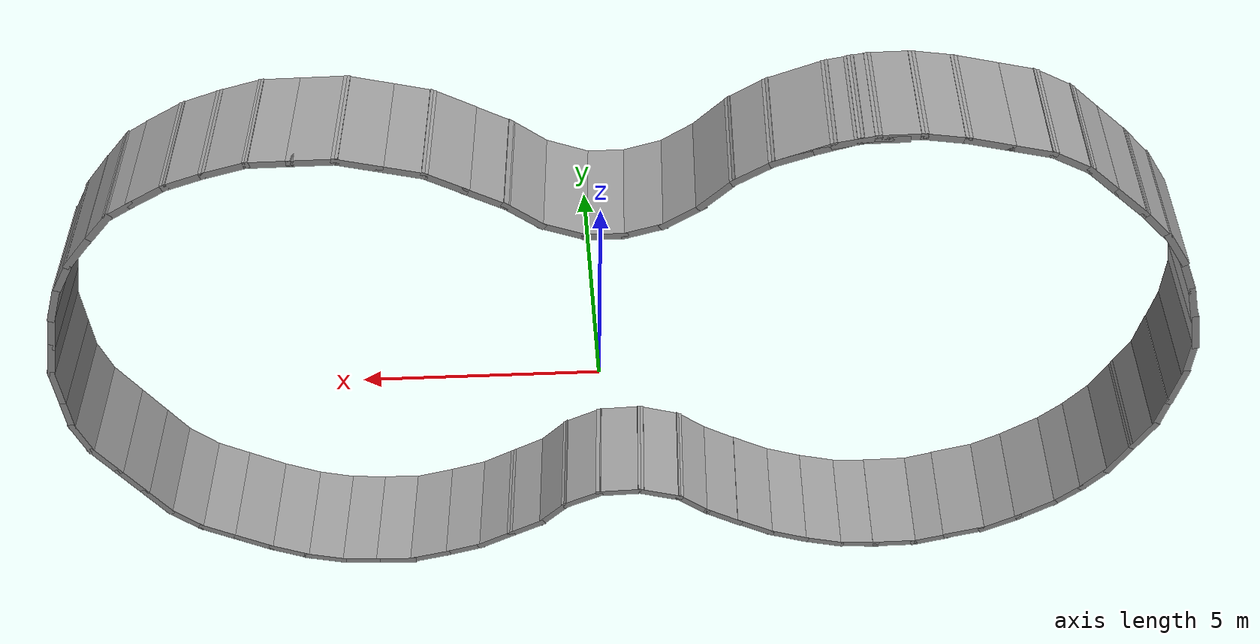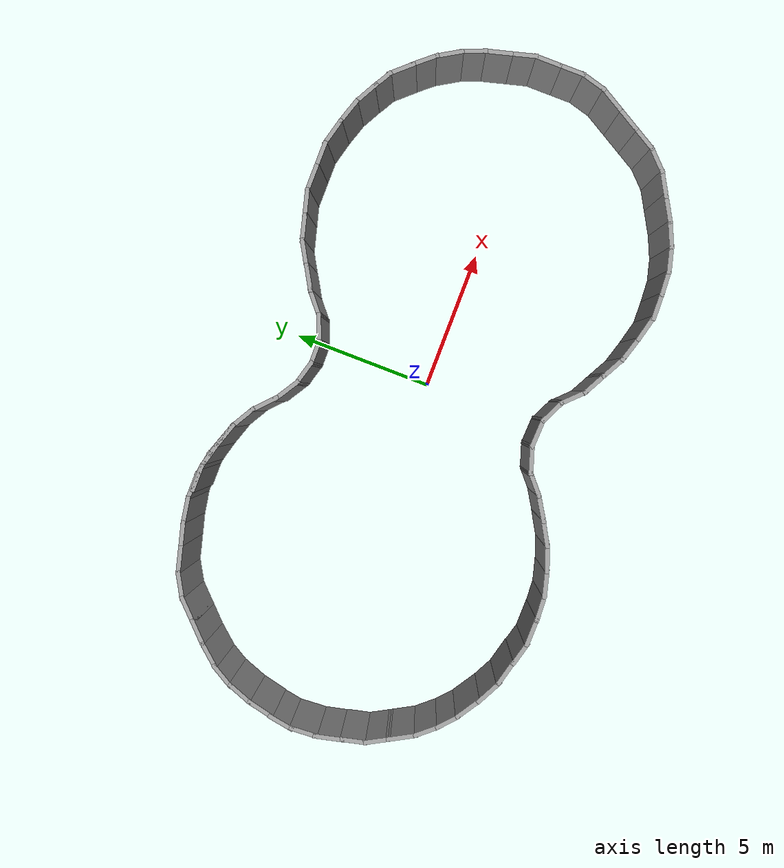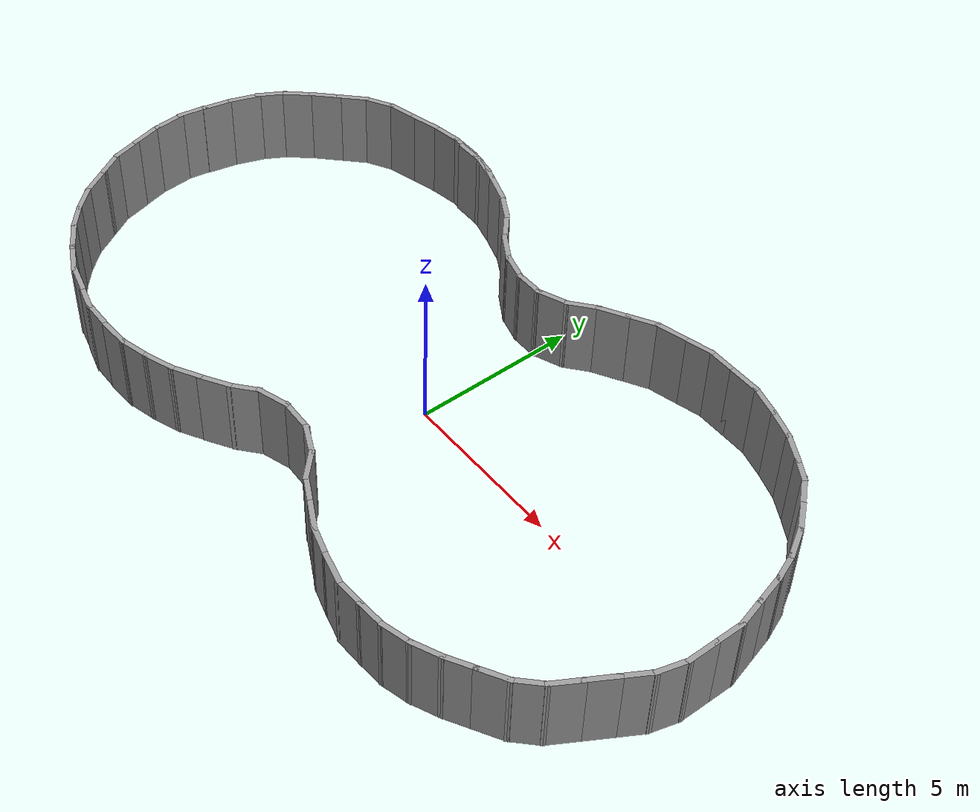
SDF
<?xml version='1.0'?>
<sdf version='1.7'>
  <model name='pool_circle'>
    <pose>-0.428757 -0.081833 0 0 -0 0</pose>
    <link name='Wall_0'>
      <collision name='Wall_0_Collision'>
        <geometry>
          <box>
            <size>1 0.15 2.5</size>
          </box>
        </geometry>
        <pose>0 0 1.25 0 -0 0</pose>
      </collision>
      <visual name='Wall_0_Visual'>
        <pose>0 0 1.25 0 -0 0</pose>
        <geometry>
          <box>
            <size>1 0.15 2.5</size>
          </box>
        </geometry>
        <material>
          <script>
            <uri>file://media/materials/scripts/gazebo.material</uri>
            <name>Gazebo/Grey</name>
          </script>
          <ambient>1 1 1 1</ambient>
        </material>
        <meta>
          <layer>0</layer>
        </meta>
      </visual>
      <pose>-5.26707 6.16933 0 0 -0 0</pose>
    </link>
    <link name='Wall_1'>
      <collision name='Wall_1_Collision'>
        <geometry>
          <box>
            <size>1 0.15 2.5</size>
          </box>
        </geometry>
        <pose>0 0 1.25 0 -0 0</pose>
      </collision>
      <visual name='Wall_1_Visual'>
        <pose>0 0 1.25 0 -0 0</pose>
        <geometry>
          <box>
            <size>1 0.15 2.5</size>
          </box>
        </geometry>
        <material>
          <script>
            <uri>file://media/materials/scripts/gazebo.material</uri>
            <name>Gazebo/Grey</name>
          </script>
          <ambient>1 1 1 1</ambient>
        </material>
        <meta>
          <layer>0</layer>
        </meta>
      </visual>
      <pose>-4.43155 6.05933 0 0 -0 -0.261799</pose>
    </link>
    <link name='Wall_10'>
      <collision name='Wall_10_Collision'>
        <geometry>
          <box>
            <size>1 0.15 2.5</size>
          </box>
        </geometry>
        <pose>0 0 1.25 0 -0 0</pose>
      </collision>
      <visual name='Wall_10_Visual'>
        <pose>0 0 1.25 0 -0 0</pose>
        <geometry>
          <box>
            <size>1 0.15 2.5</size>
          </box>
        </geometry>
        <material>
          <script>
            <uri>file://media/materials/scripts/gazebo.material</uri>
            <name>Gazebo/Grey</name>
          </script>
          <ambient>1 1 1 1</ambient>
        </material>
        <meta>
          <layer>0</layer>
        </meta>
      </visual>
      <pose>2.33446 5.08329 0 0 -0 0.523599</pose>
    </link>
    <link name='Wall_11'>
      <collision name='Wall_11_Collision'>
        <geometry>
          <box>
            <size>1 0.15 2.5</size>
          </box>
        </geometry>
        <pose>0 0 1.25 0 -0 0</pose>
      </collision>
      <visual name='Wall_11_Visual'>
        <pose>0 0 1.25 0 -0 0</pose>
        <geometry>
          <box>
            <size>1 0.15 2.5</size>
          </box>
        </geometry>
        <material>
          <script>
            <uri>file://media/materials/scripts/gazebo.material</uri>
            <name>Gazebo/Grey</name>
          </script>
          <ambient>1 1 1 1</ambient>
        </material>
        <meta>
          <layer>0</layer>
        </meta>
      </visual>
      <pose>3.07059 5.51684 0 0 -0 0.523599</pose>
    </link>
    <link name='Wall_12'>
      <collision name='Wall_12_Collision'>
        <geometry>
          <box>
            <size>1 0.15 2.5</size>
          </box>
        </geometry>
        <pose>0 0 1.25 0 -0 0</pose>
      </collision>
      <visual name='Wall_12_Visual'>
        <pose>0 0 1.25 0 -0 0</pose>
        <geometry>
          <box>
            <size>1 0.15 2.5</size>
          </box>
        </geometry>
        <material>
          <script>
            <uri>file://media/materials/scripts/gazebo.material</uri>
            <name>Gazebo/Grey</name>
          </script>
          <ambient>1 1 1 1</ambient>
        </material>
        <meta>
          <layer>0</layer>
        </meta>
      </visual>
      <pose>3.84917 5.83933 0 0 -0 0.261799</pose>
    </link>
    <link name='Wall_13'>
      <collision name='Wall_13_Collision'>
        <geometry>
          <box>
            <size>1 0.15 2.5</size>
          </box>
        </geometry>
        <pose>0 0 1.25 0 -0 0</pose>
      </collision>
      <visual name='Wall_13_Visual'>
        <pose>0 0 1.25 0 -0 0</pose>
        <geometry>
          <box>
            <size>1 0.15 2.5</size>
          </box>
        </geometry>
        <material>
          <script>
            <uri>file://media/materials/scripts/gazebo.material</uri>
            <name>Gazebo/Grey</name>
          </script>
          <ambient>1 1 1 1</ambient>
        </material>
        <meta>
          <layer>0</layer>
        </meta>
      </visual>
      <pose>4.6702 6.05933 0 0 -0 0.261799</pose>
    </link>
    <link name='Wall_14'>
      <collision name='Wall_14_Collision'>
        <geometry>
          <box>
            <size>1 0.15 2.5</size>
          </box>
        </geometry>
        <pose>0 0 1.25 0 -0 0</pose>
      </collision>
      <visual name='Wall_14_Visual'>
        <pose>0 0 1.25 0 -0 0</pose>
        <geometry>
          <box>
            <size>1 0.15 2.5</size>
          </box>
        </geometry>
        <material>
          <script>
            <uri>file://media/materials/scripts/gazebo.material</uri>
            <name>Gazebo/Grey</name>
          </script>
          <ambient>1 1 1 1</ambient>
        </material>
        <meta>
          <layer>0</layer>
        </meta>
      </visual>
      <pose>5.50572 6.16933 0 0 -0 0</pose>
    </link>
    <link name='Wall_15'>
      <collision name='Wall_15_Collision'>
        <geometry>
          <box>
            <size>0.980668 0.15 2.5</size>
          </box>
        </geometry>
        <pose>0 0 1.25 0 -0 0</pose>
      </collision>
      <visual name='Wall_15_Visual'>
        <pose>0 0 1.25 0 -0 0</pose>
        <geometry>
          <box>
            <size>0.980668 0.15 2.5</size>
          </box>
        </geometry>
        <material>
          <script>
            <uri>file://media/materials/scripts/gazebo.material</uri>
            <name>Gazebo/Grey</name>
          </script>
          <ambient>1 1 1 1</ambient>
        </material>
        <meta>
          <layer>0</layer>
        </meta>
      </visual>
      <pose>6.34605 6.16933 0 0 -0 0</pose>
    </link>
    <link name='Wall_16'>
      <collision name='Wall_16_Collision'>
        <geometry>
          <box>
            <size>1.03244 0.15 2.5</size>
          </box>
        </geometry>
        <pose>0 0 1.25 0 -0 0</pose>
      </collision>
      <visual name='Wall_16_Visual'>
        <pose>0 0 1.25 0 -0 0</pose>
        <geometry>
          <box>
            <size>1.03244 0.15 2.5</size>
          </box>
        </geometry>
        <material>
          <script>
            <uri>file://media/materials/scripts/gazebo.material</uri>
            <name>Gazebo/Grey</name>
          </script>
          <ambient>1 1 1 1</ambient>
        </material>
        <meta>
          <layer>0</layer>
        </meta>
      </visual>
      <pose>7.20801 6.05933 0 0 -0 -0.251963</pose>
    </link>
    <link name='Wall_2'>
      <collision name='Wall_2_Collision'>
        <geometry>
          <box>
            <size>1.015 0.15 2.5</size>
          </box>
        </geometry>
        <pose>0 0 1.25 0 -0 0</pose>
      </collision>
      <visual name='Wall_2_Visual'>
        <pose>0 0 1.25 0 -0 0</pose>
        <geometry>
          <box>
            <size>1.015 0.15 2.5</size>
          </box>
        </geometry>
        <material>
          <script>
            <uri>file://media/materials/scripts/gazebo.material</uri>
            <name>Gazebo/Grey</name>
          </script>
          <ambient>1 1 1 1</ambient>
        </material>
        <meta>
          <layer>0</layer>
        </meta>
      </visual>
      <pose>-3.61051 5.8132 0 0 -0 -0.320188</pose>
    </link>
    <link name='Wall_3'>
      <collision name='Wall_3_Collision'>
        <geometry>
          <box>
            <size>1 0.15 2.5</size>
          </box>
        </geometry>
        <pose>0 0 1.25 0 -0 0</pose>
      </collision>
      <visual name='Wall_3_Visual'>
        <pose>0 0 1.25 0 -0 0</pose>
        <geometry>
          <box>
            <size>1 0.15 2.5</size>
          </box>
        </geometry>
        <material>
          <script>
            <uri>file://media/materials/scripts/gazebo.material</uri>
            <name>Gazebo/Grey</name>
          </script>
          <ambient>1 1 1 1</ambient>
        </material>
        <meta>
          <layer>0</layer>
        </meta>
      </visual>
      <pose>-2.83193 5.46458 0 0 -0 -0.523599</pose>
    </link>
    <link name='Wall_33'>
      <collision name='Wall_33_Collision'>
        <geometry>
          <box>
            <size>0.995804 0.15 2.5</size>
          </box>
        </geometry>
        <pose>0 0 1.25 0 -0 0</pose>
      </collision>
      <visual name='Wall_33_Visual'>
        <pose>0 0 1.25 0 -0 0</pose>
        <geometry>
          <box>
            <size>0.995804 0.15 2.5</size>
          </box>
        </geometry>
        <material>
          <script>
            <uri>file://media/materials/scripts/gazebo.material</uri>
            <name>Gazebo/Grey</name>
          </script>
          <ambient>1 1 1 1</ambient>
        </material>
        <meta>
          <layer>0</layer>
        </meta>
      </visual>
      <pose>8.03732 5.8181 0 0 -0 -0.315521</pose>
    </link>
    <link name='Wall_34'>
      <collision name='Wall_34_Collision'>
        <geometry>
          <box>
            <size>1.00653 0.15 2.5</size>
          </box>
        </geometry>
        <pose>0 0 1.25 0 -0 0</pose>
      </collision>
      <visual name='Wall_34_Visual'>
        <pose>0 0 1.25 0 -0 0</pose>
        <geometry>
          <box>
            <size>1.00653 0.15 2.5</size>
          </box>
        </geometry>
        <material>
          <script>
            <uri>file://media/materials/scripts/gazebo.material</uri>
            <name>Gazebo/Grey</name>
          </script>
          <ambient>1 1 1 1</ambient>
        </material>
        <meta>
          <layer>0</layer>
        </meta>
      </visual>
      <pose>8.8159 5.48286 0 0 -0 -0.496504</pose>
    </link>
    <link name='Wall_35'>
      <collision name='Wall_35_Collision'>
        <geometry>
          <box>
            <size>0.76161 0.15 2.5</size>
          </box>
        </geometry>
        <pose>0 0 1.25 0 -0 0</pose>
      </collision>
      <visual name='Wall_35_Visual'>
        <pose>0 0 1.25 0 -0 0</pose>
        <geometry>
          <box>
            <size>0.76161 0.15 2.5</size>
          </box>
        </geometry>
        <material>
          <script>
            <uri>file://media/materials/scripts/gazebo.material</uri>
            <name>Gazebo/Grey</name>
          </script>
          <ambient>1 1 1 1</ambient>
        </material>
        <meta>
          <layer>0</layer>
        </meta>
      </visual>
      <pose>9.44801 5.12461 0 0 -0 -0.528682</pose>
    </link>
    <link name='Wall_36'>
      <collision name='Wall_36_Collision'>
        <geometry>
          <box>
            <size>0.995041 0.15 2.5</size>
          </box>
        </geometry>
        <pose>0 0 1.25 0 -0 0</pose>
      </collision>
      <visual name='Wall_36_Visual'>
        <pose>0 0 1.25 0 -0 0</pose>
        <geometry>
          <box>
            <size>0.995041 0.15 2.5</size>
          </box>
        </geometry>
        <material>
          <script>
            <uri>file://media/materials/scripts/gazebo.material</uri>
            <name>Gazebo/Grey</name>
          </script>
          <ambient>1 1 1 1</ambient>
        </material>
        <meta>
          <layer>0</layer>
        </meta>
      </visual>
      <pose>9.9956 4.66559 0 0 -0 -0.835168</pose>
    </link>
    <link name='Wall_37'>
      <collision name='Wall_37_Collision'>
        <geometry>
          <box>
            <size>0.984602 0.15 2.5</size>
          </box>
        </geometry>
        <pose>0 0 1.25 0 -0 0</pose>
      </collision>
      <visual name='Wall_37_Visual'>
        <pose>0 0 1.25 0 -0 0</pose>
        <geometry>
          <box>
            <size>0.984602 0.15 2.5</size>
          </box>
        </geometry>
        <material>
          <script>
            <uri>file://media/materials/scripts/gazebo.material</uri>
            <name>Gazebo/Grey</name>
          </script>
          <ambient>1 1 1 1</ambient>
        </material>
        <meta>
          <layer>0</layer>
        </meta>
      </visual>
      <pose>10.5584 4.03483 0 0 -0 -0.864636</pose>
    </link>
    <link name='Wall_38'>
      <collision name='Wall_38_Collision'>
        <geometry>
          <box>
            <size>1.00862 0.15 2.5</size>
          </box>
        </geometry>
        <pose>0 0 1.25 0 -0 0</pose>
      </collision>
      <visual name='Wall_38_Visual'>
        <pose>0 0 1.25 0 -0 0</pose>
        <geometry>
          <box>
            <size>1.00862 0.15 2.5</size>
          </box>
        </geometry>
        <material>
          <script>
            <uri>file://media/materials/scripts/gazebo.material</uri>
            <name>Gazebo/Grey</name>
          </script>
          <ambient>1 1 1 1</ambient>
        </material>
        <meta>
          <layer>0</layer>
        </meta>
      </visual>
      <pose>11.0417 3.34926 0 0 -0 -1.03006</pose>
    </link>
    <link name='Wall_39'>
      <collision name='Wall_39_Collision'>
        <geometry>
          <box>
            <size>0.940417 0.15 2.5</size>
          </box>
        </geometry>
        <pose>0 0 1.25 0 -0 0</pose>
      </collision>
      <visual name='Wall_39_Visual'>
        <pose>0 0 1.25 0 -0 0</pose>
        <geometry>
          <box>
            <size>0.940417 0.15 2.5</size>
          </box>
        </geometry>
        <material>
          <script>
            <uri>file://media/materials/scripts/gazebo.material</uri>
            <name>Gazebo/Grey</name>
          </script>
          <ambient>1 1 1 1</ambient>
        </material>
        <meta>
          <layer>0</layer>
        </meta>
      </visual>
      <pose>11.4152 2.61315 0 0 -0 -1.19792</pose>
    </link>
    <link name='Wall_4'>
      <collision name='Wall_4_Collision'>
        <geometry>
          <box>
            <size>1.03772 0.15 2.5</size>
          </box>
        </geometry>
        <pose>0 0 1.25 0 -0 0</pose>
      </collision>
      <visual name='Wall_4_Visual'>
        <pose>0 0 1.25 0 -0 0</pose>
        <geometry>
          <box>
            <size>1.03772 0.15 2.5</size>
          </box>
        </geometry>
        <material>
          <script>
            <uri>file://media/materials/scripts/gazebo.material</uri>
            <name>Gazebo/Grey</name>
          </script>
          <ambient>1 1 1 1</ambient>
        </material>
        <meta>
          <layer>0</layer>
        </meta>
      </visual>
      <pose>-2.13722 4.95156 0 0 -0 -0.74376</pose>
    </link>
    <link name='Wall_40'>
      <collision name='Wall_40_Collision'>
        <geometry>
          <box>
            <size>1 0.15 2.5</size>
          </box>
        </geometry>
        <pose>0 0 1.25 0 -0 0</pose>
      </collision>
      <visual name='Wall_40_Visual'>
        <pose>0 0 1.25 0 -0 0</pose>
        <geometry>
          <box>
            <size>1 0.15 2.5</size>
          </box>
        </geometry>
        <material>
          <script>
            <uri>file://media/materials/scripts/gazebo.material</uri>
            <name>Gazebo/Grey</name>
          </script>
          <ambient>1 1 1 1</ambient>
        </material>
        <meta>
          <layer>0</layer>
        </meta>
      </visual>
      <pose>11.6691 1.83458 0 0 -0 -1.309</pose>
    </link>
    <link name='Wall_41'>
      <collision name='Wall_41_Collision'>
        <geometry>
          <box>
            <size>1 0.15 2.5</size>
          </box>
        </geometry>
        <pose>0 0 1.25 0 -0 0</pose>
      </collision>
      <visual name='Wall_41_Visual'>
        <pose>0 0 1.25 0 -0 0</pose>
        <geometry>
          <box>
            <size>1 0.15 2.5</size>
          </box>
        </geometry>
        <material>
          <script>
            <uri>file://media/materials/scripts/gazebo.material</uri>
            <name>Gazebo/Grey</name>
          </script>
          <ambient>1 1 1 1</ambient>
        </material>
        <meta>
          <layer>0</layer>
        </meta>
      </visual>
      <pose>11.8891 1.01354 0 0 -0 -1.309</pose>
    </link>
    <link name='Wall_42'>
      <collision name='Wall_42_Collision'>
        <geometry>
          <box>
            <size>1 0.15 2.5</size>
          </box>
        </geometry>
        <pose>0 0 1.25 0 -0 0</pose>
      </collision>
      <visual name='Wall_42_Visual'>
        <pose>0 0 1.25 0 -0 0</pose>
        <geometry>
          <box>
            <size>1 0.15 2.5</size>
          </box>
        </geometry>
        <material>
          <script>
            <uri>file://media/materials/scripts/gazebo.material</uri>
            <name>Gazebo/Grey</name>
          </script>
          <ambient>1 1 1 1</ambient>
        </material>
        <meta>
          <layer>0</layer>
        </meta>
      </visual>
      <pose>11.9991 0.178022 0 0 -0 -1.5708</pose>
    </link>
    <link name='Wall_43'>
      <collision name='Wall_43_Collision'>
        <geometry>
          <box>
            <size>1 0.15 2.5</size>
          </box>
        </geometry>
        <pose>0 0 1.25 0 -0 0</pose>
      </collision>
      <visual name='Wall_43_Visual'>
        <pose>0 0 1.25 0 -0 0</pose>
        <geometry>
          <box>
            <size>1 0.15 2.5</size>
          </box>
        </geometry>
        <material>
          <script>
            <uri>file://media/materials/scripts/gazebo.material</uri>
            <name>Gazebo/Grey</name>
          </script>
          <ambient>1 1 1 1</ambient>
        </material>
        <meta>
          <layer>0</layer>
        </meta>
      </visual>
      <pose>11.9991 -0.671978 0 0 -0 -1.5708</pose>
    </link>
    <link name='Wall_44'>
      <collision name='Wall_44_Collision'>
        <geometry>
          <box>
            <size>1 0.15 2.5</size>
          </box>
        </geometry>
        <pose>0 0 1.25 0 -0 0</pose>
      </collision>
      <visual name='Wall_44_Visual'>
        <pose>0 0 1.25 0 -0 0</pose>
        <geometry>
          <box>
            <size>1 0.15 2.5</size>
          </box>
        </geometry>
        <material>
          <script>
            <uri>file://media/materials/scripts/gazebo.material</uri>
            <name>Gazebo/Grey</name>
          </script>
          <ambient>1 1 1 1</ambient>
        </material>
        <meta>
          <layer>0</layer>
        </meta>
      </visual>
      <pose>11.8891 -1.5075 0 0 -0 -1.8326</pose>
    </link>
    <link name='Wall_45'>
      <collision name='Wall_45_Collision'>
        <geometry>
          <box>
            <size>1 0.15 2.5</size>
          </box>
        </geometry>
        <pose>0 0 1.25 0 -0 0</pose>
      </collision>
      <visual name='Wall_45_Visual'>
        <pose>0 0 1.25 0 -0 0</pose>
        <geometry>
          <box>
            <size>1 0.15 2.5</size>
          </box>
        </geometry>
        <material>
          <script>
            <uri>file://media/materials/scripts/gazebo.material</uri>
            <name>Gazebo/Grey</name>
          </script>
          <ambient>1 1 1 1</ambient>
        </material>
        <meta>
          <layer>0</layer>
        </meta>
      </visual>
      <pose>11.5666 -2.28608 0 0 -0 -2.0944</pose>
    </link>
    <link name='Wall_46'>
      <collision name='Wall_46_Collision'>
        <geometry>
          <box>
            <size>1 0.15 2.5</size>
          </box>
        </geometry>
        <pose>0 0 1.25 0 -0 0</pose>
      </collision>
      <visual name='Wall_46_Visual'>
        <pose>0 0 1.25 0 -0 0</pose>
        <geometry>
          <box>
            <size>1 0.15 2.5</size>
          </box>
        </geometry>
        <material>
          <script>
            <uri>file://media/materials/scripts/gazebo.material</uri>
            <name>Gazebo/Grey</name>
          </script>
          <ambient>1 1 1 1</ambient>
        </material>
        <meta>
          <layer>0</layer>
        </meta>
      </visual>
      <pose>11.1416 -3.0222 0 0 -0 -2.0944</pose>
    </link>
    <link name='Wall_47'>
      <collision name='Wall_47_Collision'>
        <geometry>
          <box>
            <size>1 0.15 2.5</size>
          </box>
        </geometry>
        <pose>0 0 1.25 0 -0 0</pose>
      </collision>
      <visual name='Wall_47_Visual'>
        <pose>0 0 1.25 0 -0 0</pose>
        <geometry>
          <box>
            <size>1 0.15 2.5</size>
          </box>
        </geometry>
        <material>
          <script>
            <uri>file://media/materials/scripts/gazebo.material</uri>
            <name>Gazebo/Grey</name>
          </script>
          <ambient>1 1 1 1</ambient>
        </material>
        <meta>
          <layer>0</layer>
        </meta>
      </visual>
      <pose>10.7166 -3.75832 0 0 -0 -2.0944</pose>
    </link>
    <link name='Wall_48'>
      <collision name='Wall_48_Collision'>
        <geometry>
          <box>
            <size>1 0.15 2.5</size>
          </box>
        </geometry>
        <pose>0 0 1.25 0 -0 0</pose>
      </collision>
      <visual name='Wall_48_Visual'>
        <pose>0 0 1.25 0 -0 0</pose>
        <geometry>
          <box>
            <size>1 0.15 2.5</size>
          </box>
        </geometry>
        <material>
          <script>
            <uri>file://media/materials/scripts/gazebo.material</uri>
            <name>Gazebo/Grey</name>
          </script>
          <ambient>1 1 1 1</ambient>
        </material>
        <meta>
          <layer>0</layer>
        </meta>
      </visual>
      <pose>10.2036 -4.4269 0 0 -0 -2.35619</pose>
    </link>
    <link name='Wall_49'>
      <collision name='Wall_49_Collision'>
        <geometry>
          <box>
            <size>1 0.15 2.5</size>
          </box>
        </geometry>
        <pose>0 0 1.25 0 -0 0</pose>
      </collision>
      <visual name='Wall_49_Visual'>
        <pose>0 0 1.25 0 -0 0</pose>
        <geometry>
          <box>
            <size>1 0.15 2.5</size>
          </box>
        </geometry>
        <material>
          <script>
            <uri>file://media/materials/scripts/gazebo.material</uri>
            <name>Gazebo/Grey</name>
          </script>
          <ambient>1 1 1 1</ambient>
        </material>
        <meta>
          <layer>0</layer>
        </meta>
      </visual>
      <pose>9.53504 -4.93992 0 0 -0 -2.61799</pose>
    </link>
    <link name='Wall_5'>
      <collision name='Wall_5_Collision'>
        <geometry>
          <box>
            <size>1.0456 0.15 2.5</size>
          </box>
        </geometry>
        <pose>0 0 1.25 0 -0 0</pose>
      </collision>
      <visual name='Wall_5_Visual'>
        <pose>0 0 1.25 0 -0 0</pose>
        <geometry>
          <box>
            <size>1.0456 0.15 2.5</size>
          </box>
        </geometry>
        <material>
          <script>
            <uri>file://media/materials/scripts/gazebo.material</uri>
            <name>Gazebo/Grey</name>
          </script>
          <ambient>1 1 1 1</ambient>
        </material>
        <meta>
          <layer>0</layer>
        </meta>
      </visual>
      <pose>-1.45558 4.41594 0 0 -0 -0.552708</pose>
    </link>
    <link name='Wall_50'>
      <collision name='Wall_50_Collision'>
        <geometry>
          <box>
            <size>1 0.15 2.5</size>
          </box>
        </geometry>
        <pose>0 0 1.25 0 -0 0</pose>
      </collision>
      <visual name='Wall_50_Visual'>
        <pose>0 0 1.25 0 -0 0</pose>
        <geometry>
          <box>
            <size>1 0.15 2.5</size>
          </box>
        </geometry>
        <material>
          <script>
            <uri>file://media/materials/scripts/gazebo.material</uri>
            <name>Gazebo/Grey</name>
          </script>
          <ambient>1 1 1 1</ambient>
        </material>
        <meta>
          <layer>0</layer>
        </meta>
      </visual>
      <pose>8.79892 -5.36492 0 0 -0 -2.61799</pose>
    </link>
    <link name='Wall_51'>
      <collision name='Wall_51_Collision'>
        <geometry>
          <box>
            <size>1.00201 0.15 2.5</size>
          </box>
        </geometry>
        <pose>0 0 1.25 0 -0 0</pose>
      </collision>
      <visual name='Wall_51_Visual'>
        <pose>0 0 1.25 0 -0 0</pose>
        <geometry>
          <box>
            <size>1.00201 0.15 2.5</size>
          </box>
        </geometry>
        <material>
          <script>
            <uri>file://media/materials/scripts/gazebo.material</uri>
            <name>Gazebo/Grey</name>
          </script>
          <ambient>1 1 1 1</ambient>
        </material>
        <meta>
          <layer>0</layer>
        </meta>
      </visual>
      <pose>8.04209 -5.7516 0 0 -0 -2.72037</pose>
    </link>
    <link name='Wall_52'>
      <collision name='Wall_52_Collision'>
        <geometry>
          <box>
            <size>1 0.15 2.5</size>
          </box>
        </geometry>
        <pose>0 0 1.25 0 -0 0</pose>
      </collision>
      <visual name='Wall_52_Visual'>
        <pose>0 0 1.25 0 -0 0</pose>
        <geometry>
          <box>
            <size>1 0.15 2.5</size>
          </box>
        </geometry>
        <material>
          <script>
            <uri>file://media/materials/scripts/gazebo.material</uri>
            <name>Gazebo/Grey</name>
          </script>
          <ambient>1 1 1 1</ambient>
        </material>
        <meta>
          <layer>0</layer>
        </meta>
      </visual>
      <pose>7.25548 -6.03579 0 0 -0 -2.87979</pose>
    </link>
    <link name='Wall_53'>
      <collision name='Wall_53_Collision'>
        <geometry>
          <box>
            <size>0.934914 0.15 2.5</size>
          </box>
        </geometry>
        <pose>0 0 1.25 0 -0 0</pose>
      </collision>
      <visual name='Wall_53_Visual'>
        <pose>0 0 1.25 0 -0 0</pose>
        <geometry>
          <box>
            <size>0.934914 0.15 2.5</size>
          </box>
        </geometry>
        <material>
          <script>
            <uri>file://media/materials/scripts/gazebo.material</uri>
            <name>Gazebo/Grey</name>
          </script>
          <ambient>1 1 1 1</ambient>
        </material>
        <meta>
          <layer>0</layer>
        </meta>
      </visual>
      <pose>6.44067 -6.17143 0 0 -0 -3.07621</pose>
    </link>
    <link name='Wall_54'>
      <collision name='Wall_54_Collision'>
        <geometry>
          <box>
            <size>0.987421 0.15 2.5</size>
          </box>
        </geometry>
        <pose>0 0 1.25 0 -0 0</pose>
      </collision>
      <visual name='Wall_54_Visual'>
        <pose>0 0 1.25 0 -0 0</pose>
        <geometry>
          <box>
            <size>0.987421 0.15 2.5</size>
          </box>
        </geometry>
        <material>
          <script>
            <uri>file://media/materials/scripts/gazebo.material</uri>
            <name>Gazebo/Grey</name>
          </script>
          <ambient>1 1 1 1</ambient>
        </material>
        <meta>
          <layer>0</layer>
        </meta>
      </visual>
      <pose>5.61771 -6.20974 0 0 -0 -3.11133</pose>
    </link>
    <link name='Wall_55'>
      <collision name='Wall_55_Collision'>
        <geometry>
          <box>
            <size>1.0091 0.15 2.5</size>
          </box>
        </geometry>
        <pose>0 0 1.25 0 -0 0</pose>
      </collision>
      <visual name='Wall_55_Visual'>
        <pose>0 0 1.25 0 -0 0</pose>
        <geometry>
          <box>
            <size>1.0091 0.15 2.5</size>
          </box>
        </geometry>
        <material>
          <script>
            <uri>file://media/materials/scripts/gazebo.material</uri>
            <name>Gazebo/Grey</name>
          </script>
          <ambient>1 1 1 1</ambient>
        </material>
        <meta>
          <layer>0</layer>
        </meta>
      </visual>
      <pose>4.78219 -6.10608 0 0 -0 2.89786</pose>
    </link>
    <link name='Wall_56'>
      <collision name='Wall_56_Collision'>
        <geometry>
          <box>
            <size>1.00691 0.15 2.5</size>
          </box>
        </geometry>
        <pose>0 0 1.25 0 -0 0</pose>
      </collision>
      <visual name='Wall_56_Visual'>
        <pose>0 0 1.25 0 -0 0</pose>
        <geometry>
          <box>
            <size>1.00691 0.15 2.5</size>
          </box>
        </geometry>
        <material>
          <script>
            <uri>file://media/materials/scripts/gazebo.material</uri>
            <name>Gazebo/Grey</name>
          </script>
          <ambient>1 1 1 1</ambient>
        </material>
        <meta>
          <layer>0</layer>
        </meta>
      </visual>
      <pose>3.95482 -5.87975 0 0 -0 2.85121</pose>
    </link>
    <link name='Wall_57'>
      <collision name='Wall_57_Collision'>
        <geometry>
          <box>
            <size>0.998773 0.15 2.5</size>
          </box>
        </geometry>
        <pose>0 0 1.25 0 -0 0</pose>
      </collision>
      <visual name='Wall_57_Visual'>
        <pose>0 0 1.25 0 -0 0</pose>
        <geometry>
          <box>
            <size>0.998773 0.15 2.5</size>
          </box>
        </geometry>
        <material>
          <script>
            <uri>file://media/materials/scripts/gazebo.material</uri>
            <name>Gazebo/Grey</name>
          </script>
          <ambient>1 1 1 1</ambient>
        </material>
        <meta>
          <layer>0</layer>
        </meta>
      </visual>
      <pose>3.1699 -5.55725 0 0 -0 2.65133</pose>
    </link>
    <link name='Wall_58'>
      <collision name='Wall_58_Collision'>
        <geometry>
          <box>
            <size>0.981639 0.15 2.5</size>
          </box>
        </geometry>
        <pose>0 0 1.25 0 -0 0</pose>
      </collision>
      <visual name='Wall_58_Visual'>
        <pose>0 0 1.25 0 -0 0</pose>
        <geometry>
          <box>
            <size>0.981639 0.15 2.5</size>
          </box>
        </geometry>
        <material>
          <script>
            <uri>file://media/materials/scripts/gazebo.material</uri>
            <name>Gazebo/Grey</name>
          </script>
          <ambient>1 1 1 1</ambient>
        </material>
        <meta>
          <layer>0</layer>
        </meta>
      </visual>
      <pose>2.42744 -5.16394 0 0 -0 2.6576</pose>
    </link>
    <link name='Wall_59'>
      <collision name='Wall_59_Collision'>
        <geometry>
          <box>
            <size>1 0.15 2.5</size>
          </box>
        </geometry>
        <pose>0 0 1.25 0 -0 0</pose>
      </collision>
      <visual name='Wall_59_Visual'>
        <pose>0 0 1.25 0 -0 0</pose>
        <geometry>
          <box>
            <size>1 0.15 2.5</size>
          </box>
        </geometry>
        <material>
          <script>
            <uri>file://media/materials/scripts/gazebo.material</uri>
            <name>Gazebo/Grey</name>
          </script>
          <ambient>1 1 1 1</ambient>
        </material>
        <meta>
          <layer>0</layer>
        </meta>
      </visual>
      <pose>1.75886 -4.66993 0 0 -0 2.35619</pose>
    </link>
    <link name='Wall_6'>
      <collision name='Wall_6_Collision'>
        <geometry>
          <box>
            <size>0.953165 0.15 2.5</size>
          </box>
        </geometry>
        <pose>0 0 1.25 0 -0 0</pose>
      </collision>
      <visual name='Wall_6_Visual'>
        <pose>0 0 1.25 0 -0 0</pose>
        <geometry>
          <box>
            <size>0.953165 0.15 2.5</size>
          </box>
        </geometry>
        <material>
          <script>
            <uri>file://media/materials/scripts/gazebo.material</uri>
            <name>Gazebo/Grey</name>
          </script>
          <ambient>1 1 1 1</ambient>
        </material>
        <meta>
          <layer>0</layer>
        </meta>
      </visual>
      <pose>-0.687239 4.08004 0 0 -0 -0.268313</pose>
    </link>
    <link name='Wall_60'>
      <collision name='Wall_60_Collision'>
        <geometry>
          <box>
            <size>1.01693 0.15 2.5</size>
          </box>
        </geometry>
        <pose>0 0 1.25 0 -0 0</pose>
      </collision>
      <visual name='Wall_60_Visual'>
        <pose>0 0 1.25 0 -0 0</pose>
        <geometry>
          <box>
            <size>1.01693 0.15 2.5</size>
          </box>
        </geometry>
        <material>
          <script>
            <uri>file://media/materials/scripts/gazebo.material</uri>
            <name>Gazebo/Grey</name>
          </script>
          <ambient>1 1 1 1</ambient>
        </material>
        <meta>
          <layer>0</layer>
        </meta>
      </visual>
      <pose>1.06684 -4.18336 0 0 -0 2.69797</pose>
    </link>
    <link name='Wall_61'>
      <collision name='Wall_61_Collision'>
        <geometry>
          <box>
            <size>1.10216 0.15 2.5</size>
          </box>
        </geometry>
        <pose>0 0 1.25 0 -0 0</pose>
      </collision>
      <visual name='Wall_61_Visual'>
        <pose>0 0 1.25 0 -0 0</pose>
        <geometry>
          <box>
            <size>1.10216 0.15 2.5</size>
          </box>
        </geometry>
        <material>
          <script>
            <uri>file://media/materials/scripts/gazebo.material</uri>
            <name>Gazebo/Grey</name>
          </script>
          <ambient>1 1 1 1</ambient>
        </material>
        <meta>
          <layer>0</layer>
        </meta>
      </visual>
      <pose>0.19963 -3.96562 0 0 -0 3.10165</pose>
    </link>
    <link name='Wall_62'>
      <collision name='Wall_62_Collision'>
        <geometry>
          <box>
            <size>1.06664 0.15 2.5</size>
          </box>
        </geometry>
        <pose>0 0 1.25 0 -0 0</pose>
      </collision>
      <visual name='Wall_62_Visual'>
        <pose>0 0 1.25 0 -0 0</pose>
        <geometry>
          <box>
            <size>1.06664 0.15 2.5</size>
          </box>
        </geometry>
        <material>
          <script>
            <uri>file://media/materials/scripts/gazebo.material</uri>
            <name>Gazebo/Grey</name>
          </script>
          <ambient>1 1 1 1</ambient>
        </material>
        <meta>
          <layer>0</layer>
        </meta>
      </visual>
      <pose>-0.699265 -4.08829 0 0 -0 -2.8273</pose>
    </link>
    <link name='Wall_63'>
      <collision name='Wall_63_Collision'>
        <geometry>
          <box>
            <size>0.955251 0.15 2.5</size>
          </box>
        </geometry>
        <pose>0 0 1.25 0 -0 0</pose>
      </collision>
      <visual name='Wall_63_Visual'>
        <pose>0 0 1.25 0 -0 0</pose>
        <geometry>
          <box>
            <size>0.955251 0.15 2.5</size>
          </box>
        </geometry>
        <material>
          <script>
            <uri>file://media/materials/scripts/gazebo.material</uri>
            <name>Gazebo/Grey</name>
          </script>
          <ambient>1 1 1 1</ambient>
        </material>
        <meta>
          <layer>0</layer>
        </meta>
      </visual>
      <pose>-1.43982 -4.49318 0 0 -0 -2.42911</pose>
    </link>
    <link name='Wall_64'>
      <collision name='Wall_64_Collision'>
        <geometry>
          <box>
            <size>1.00217 0.15 2.5</size>
          </box>
        </geometry>
        <pose>0 0 1.25 0 -0 0</pose>
      </collision>
      <visual name='Wall_64_Visual'>
        <pose>0 0 1.25 0 -0 0</pose>
        <geometry>
          <box>
            <size>1.00217 0.15 2.5</size>
          </box>
        </geometry>
        <material>
          <script>
            <uri>file://media/materials/scripts/gazebo.material</uri>
            <name>Gazebo/Grey</name>
          </script>
          <ambient>1 1 1 1</ambient>
        </material>
        <meta>
          <layer>0</layer>
        </meta>
      </visual>
      <pose>-2.1189 -4.98156 0 0 -0 -2.58479</pose>
    </link>
    <link name='Wall_65'>
      <collision name='Wall_65_Collision'>
        <geometry>
          <box>
            <size>1 0.15 2.5</size>
          </box>
        </geometry>
        <pose>0 0 1.25 0 -0 0</pose>
      </collision>
      <visual name='Wall_65_Visual'>
        <pose>0 0 1.25 0 -0 0</pose>
        <geometry>
          <box>
            <size>1 0.15 2.5</size>
          </box>
        </geometry>
        <material>
          <script>
            <uri>file://media/materials/scripts/gazebo.material</uri>
            <name>Gazebo/Grey</name>
          </script>
          <ambient>1 1 1 1</ambient>
        </material>
        <meta>
          <layer>0</layer>
        </meta>
      </visual>
      <pose>-2.84869 -5.40656 0 0 -0 -2.61799</pose>
    </link>
    <link name='Wall_66'>
      <collision name='Wall_66_Collision'>
        <geometry>
          <box>
            <size>0.999991 0.15 2.5</size>
          </box>
        </geometry>
        <pose>0 0 1.25 0 -0 0</pose>
      </collision>
      <visual name='Wall_66_Visual'>
        <pose>0 0 1.25 0 -0 0</pose>
        <geometry>
          <box>
            <size>0.999991 0.15 2.5</size>
          </box>
        </geometry>
        <material>
          <script>
            <uri>file://media/materials/scripts/gazebo.material</uri>
            <name>Gazebo/Grey</name>
          </script>
          <ambient>1 1 1 1</ambient>
        </material>
        <meta>
          <layer>0</layer>
        </meta>
      </visual>
      <pose>-3.61549 -5.76611 0 0 -0 -2.78828</pose>
    </link>
    <link name='Wall_67'>
      <collision name='Wall_67_Collision'>
        <geometry>
          <box>
            <size>1 0.15 2.5</size>
          </box>
        </geometry>
        <pose>0 0 1.25 0 -0 0</pose>
      </collision>
      <visual name='Wall_67_Visual'>
        <pose>0 0 1.25 0 -0 0</pose>
        <geometry>
          <box>
            <size>1 0.15 2.5</size>
          </box>
        </geometry>
        <material>
          <script>
            <uri>file://media/materials/scripts/gazebo.material</uri>
            <name>Gazebo/Grey</name>
          </script>
          <ambient>1 1 1 1</ambient>
        </material>
        <meta>
          <layer>0</layer>
        </meta>
      </visual>
      <pose>-4.42475 -6.02316 0 0 -0 -2.87979</pose>
    </link>
    <link name='Wall_68'>
      <collision name='Wall_68_Collision'>
        <geometry>
          <box>
            <size>0.980575 0.15 2.5</size>
          </box>
        </geometry>
        <pose>0 0 1.25 0 -0 0</pose>
      </collision>
      <visual name='Wall_68_Visual'>
        <pose>0 0 1.25 0 -0 0</pose>
        <geometry>
          <box>
            <size>0.980575 0.15 2.5</size>
          </box>
        </geometry>
        <material>
          <script>
            <uri>file://media/materials/scripts/gazebo.material</uri>
            <name>Gazebo/Grey</name>
          </script>
          <ambient>1 1 1 1</ambient>
        </material>
        <meta>
          <layer>0</layer>
        </meta>
      </visual>
      <pose>-5.24955 -6.15686 0 0 -0 -3.08445</pose>
    </link>
    <link name='Wall_69'>
      <collision name='Wall_69_Collision'>
        <geometry>
          <box>
            <size>1.02927 0.15 2.5</size>
          </box>
        </geometry>
        <pose>0 0 1.25 0 -0 0</pose>
      </collision>
      <visual name='Wall_69_Visual'>
        <pose>0 0 1.25 0 -0 0</pose>
        <geometry>
          <box>
            <size>1.02927 0.15 2.5</size>
          </box>
        </geometry>
        <material>
          <script>
            <uri>file://media/materials/scripts/gazebo.material</uri>
            <name>Gazebo/Grey</name>
          </script>
          <ambient>1 1 1 1</ambient>
        </material>
        <meta>
          <layer>0</layer>
        </meta>
      </visual>
      <pose>-6.10341 -6.16285 0 0 -0 3.12501</pose>
    </link>
    <link name='Wall_7'>
      <collision name='Wall_7_Collision'>
        <geometry>
          <box>
            <size>0.915299 0.15 2.5</size>
          </box>
        </geometry>
        <pose>0 0 1.25 0 -0 0</pose>
      </collision>
      <visual name='Wall_7_Visual'>
        <pose>0 0 1.25 0 -0 0</pose>
        <geometry>
          <box>
            <size>0.915299 0.15 2.5</size>
          </box>
        </geometry>
        <material>
          <script>
            <uri>file://media/materials/scripts/gazebo.material</uri>
            <name>Gazebo/Grey</name>
          </script>
          <ambient>1 1 1 1</ambient>
        </material>
        <meta>
          <layer>0</layer>
        </meta>
      </visual>
      <pose>0.082613 3.9764 0 0 -0 0.00738</pose>
    </link>
    <link name='Wall_70'>
      <collision name='Wall_70_Collision'>
        <geometry>
          <box>
            <size>0.929158 0.15 2.5</size>
          </box>
        </geometry>
        <pose>0 0 1.25 0 -0 0</pose>
      </collision>
      <visual name='Wall_70_Visual'>
        <pose>0 0 1.25 0 -0 0</pose>
        <geometry>
          <box>
            <size>0.929158 0.15 2.5</size>
          </box>
        </geometry>
        <material>
          <script>
            <uri>file://media/materials/scripts/gazebo.material</uri>
            <name>Gazebo/Grey</name>
          </script>
          <ambient>1 1 1 1</ambient>
        </material>
        <meta>
          <layer>0</layer>
        </meta>
      </visual>
      <pose>-6.91904 -6.06422 0 0 -0 2.87731</pose>
    </link>
    <link name='Wall_71'>
      <collision name='Wall_71_Collision'>
        <geometry>
          <box>
            <size>0.968093 0.15 2.5</size>
          </box>
        </geometry>
        <pose>0 0 1.25 0 -0 0</pose>
      </collision>
      <visual name='Wall_71_Visual'>
        <pose>0 0 1.25 0 -0 0</pose>
        <geometry>
          <box>
            <size>0.968093 0.15 2.5</size>
          </box>
        </geometry>
        <material>
          <script>
            <uri>file://media/materials/scripts/gazebo.material</uri>
            <name>Gazebo/Grey</name>
          </script>
          <ambient>1 1 1 1</ambient>
        </material>
        <meta>
          <layer>0</layer>
        </meta>
      </visual>
      <pose>-7.69103 -5.84162 0 0 -0 2.88778</pose>
    </link>
    <link name='Wall_72'>
      <collision name='Wall_72_Collision'>
        <geometry>
          <box>
            <size>1.07191 0.15 2.5</size>
          </box>
        </geometry>
        <pose>0 0 1.25 0 -0 0</pose>
      </collision>
      <visual name='Wall_72_Visual'>
        <pose>0 0 1.25 0 -0 0</pose>
        <geometry>
          <box>
            <size>1.07191 0.15 2.5</size>
          </box>
        </geometry>
        <material>
          <script>
            <uri>file://media/materials/scripts/gazebo.material</uri>
            <name>Gazebo/Grey</name>
          </script>
          <ambient>1 1 1 1</ambient>
        </material>
        <meta>
          <layer>0</layer>
        </meta>
      </visual>
      <pose>-8.49591 -5.54431 0 0 -0 2.66193</pose>
    </link>
    <link name='Wall_73'>
      <collision name='Wall_73_Collision'>
        <geometry>
          <box>
            <size>1.03157 0.15 2.5</size>
          </box>
        </geometry>
        <pose>0 0 1.25 0 -0 0</pose>
      </collision>
      <visual name='Wall_73_Visual'>
        <pose>0 0 1.25 0 -0 0</pose>
        <geometry>
          <box>
            <size>1.03157 0.15 2.5</size>
          </box>
        </geometry>
        <material>
          <script>
            <uri>file://media/materials/scripts/gazebo.material</uri>
            <name>Gazebo/Grey</name>
          </script>
          <ambient>1 1 1 1</ambient>
        </material>
        <meta>
          <layer>0</layer>
        </meta>
      </visual>
      <pose>-9.26093 -5.09169 0 0 -0 2.56609</pose>
    </link>
    <link name='Wall_74'>
      <collision name='Wall_74_Collision'>
        <geometry>
          <box>
            <size>0.904124 0.15 2.5</size>
          </box>
        </geometry>
        <pose>0 0 1.25 0 -0 0</pose>
      </collision>
      <visual name='Wall_74_Visual'>
        <pose>0 0 1.25 0 -0 0</pose>
        <geometry>
          <box>
            <size>0.904124 0.15 2.5</size>
          </box>
        </geometry>
        <material>
          <script>
            <uri>file://media/materials/scripts/gazebo.material</uri>
            <name>Gazebo/Grey</name>
          </script>
          <ambient>1 1 1 1</ambient>
        </material>
        <meta>
          <layer>0</layer>
        </meta>
      </visual>
      <pose>-9.92438 -4.59922 0 0 -0 2.4076</pose>
    </link>
    <link name='Wall_75'>
      <collision name='Wall_75_Collision'>
        <geometry>
          <box>
            <size>0.919872 0.15 2.5</size>
          </box>
        </geometry>
        <pose>0 0 1.25 0 -0 0</pose>
      </collision>
      <visual name='Wall_75_Visual'>
        <pose>0 0 1.25 0 -0 0</pose>
        <geometry>
          <box>
            <size>0.919872 0.15 2.5</size>
          </box>
        </geometry>
        <material>
          <script>
            <uri>file://media/materials/scripts/gazebo.material</uri>
            <name>Gazebo/Grey</name>
          </script>
          <ambient>1 1 1 1</ambient>
        </material>
        <meta>
          <layer>0</layer>
        </meta>
      </visual>
      <pose>-10.4689 -4.041 0 0 -0 2.28068</pose>
    </link>
    <link name='Wall_76'>
      <collision name='Wall_76_Collision'>
        <geometry>
          <box>
            <size>1.0776 0.15 2.5</size>
          </box>
        </geometry>
        <pose>0 0 1.25 0 -0 0</pose>
      </collision>
      <visual name='Wall_76_Visual'>
        <pose>0 0 1.25 0 -0 0</pose>
        <geometry>
          <box>
            <size>1.0776 0.15 2.5</size>
          </box>
        </geometry>
        <material>
          <script>
            <uri>file://media/materials/scripts/gazebo.material</uri>
            <name>Gazebo/Grey</name>
          </script>
          <ambient>1 1 1 1</ambient>
        </material>
        <meta>
          <layer>0</layer>
        </meta>
      </visual>
      <pose>-10.944 -3.35673 0 0 -0 2.0753</pose>
    </link>
    <link name='Wall_77'>
      <collision name='Wall_77_Collision'>
        <geometry>
          <box>
            <size>0.929859 0.15 2.5</size>
          </box>
        </geometry>
        <pose>0 0 1.25 0 -0 0</pose>
      </collision>
      <visual name='Wall_77_Visual'>
        <pose>0 0 1.25 0 -0 0</pose>
        <geometry>
          <box>
            <size>0.929859 0.15 2.5</size>
          </box>
        </geometry>
        <material>
          <script>
            <uri>file://media/materials/scripts/gazebo.material</uri>
            <name>Gazebo/Grey</name>
          </script>
          <ambient>1 1 1 1</ambient>
        </material>
        <meta>
          <layer>0</layer>
        </meta>
      </visual>
      <pose>-11.3568 -2.60943 0 0 -0 2.07567</pose>
    </link>
    <link name='Wall_78'>
      <collision name='Wall_78_Collision'>
        <geometry>
          <box>
            <size>0.931256 0.15 2.5</size>
          </box>
        </geometry>
        <pose>0 0 1.25 0 -0 0</pose>
      </collision>
      <visual name='Wall_78_Visual'>
        <pose>0 0 1.25 0 -0 0</pose>
        <geometry>
          <box>
            <size>0.931256 0.15 2.5</size>
          </box>
        </geometry>
        <material>
          <script>
            <uri>file://media/materials/scripts/gazebo.material</uri>
            <name>Gazebo/Grey</name>
          </script>
          <ambient>1 1 1 1</ambient>
        </material>
        <meta>
          <layer>0</layer>
        </meta>
      </visual>
      <pose>-11.6349 -1.88791 0 0 -0 1.80194</pose>
    </link>
    <link name='Wall_79'>
      <collision name='Wall_79_Collision'>
        <geometry>
          <box>
            <size>1.06934 0.15 2.5</size>
          </box>
        </geometry>
        <pose>0 0 1.25 0 -0 0</pose>
      </collision>
      <visual name='Wall_79_Visual'>
        <pose>0 0 1.25 0 -0 0</pose>
        <geometry>
          <box>
            <size>1.06934 0.15 2.5</size>
          </box>
        </geometry>
        <material>
          <script>
            <uri>file://media/materials/scripts/gazebo.material</uri>
            <name>Gazebo/Grey</name>
          </script>
          <ambient>1 1 1 1</ambient>
        </material>
        <meta>
          <layer>0</layer>
        </meta>
      </visual>
      <pose>-11.8406 -1.05999 0 0 -0 1.79966</pose>
    </link>
    <link name='Wall_8'>
      <collision name='Wall_8_Collision'>
        <geometry>
          <box>
            <size>1.04857 0.15 2.5</size>
          </box>
        </geometry>
        <pose>0 0 1.25 0 -0 0</pose>
      </collision>
      <visual name='Wall_8_Visual'>
        <pose>0 0 1.25 0 -0 0</pose>
        <geometry>
          <box>
            <size>1.04857 0.15 2.5</size>
          </box>
        </geometry>
        <material>
          <script>
            <uri>file://media/materials/scripts/gazebo.material</uri>
            <name>Gazebo/Grey</name>
          </script>
          <ambient>1 1 1 1</ambient>
        </material>
        <meta>
          <layer>0</layer>
        </meta>
      </visual>
      <pose>0.875771 4.14853 0 0 -0 0.386369</pose>
    </link>
    <link name='Wall_80'>
      <collision name='Wall_80_Collision'>
        <geometry>
          <box>
            <size>0.989784 0.15 2.5</size>
          </box>
        </geometry>
        <pose>0 0 1.25 0 -0 0</pose>
      </collision>
      <visual name='Wall_80_Visual'>
        <pose>0 0 1.25 0 -0 0</pose>
        <geometry>
          <box>
            <size>0.989784 0.15 2.5</size>
          </box>
        </geometry>
        <material>
          <script>
            <uri>file://media/materials/scripts/gazebo.material</uri>
            <name>Gazebo/Grey</name>
          </script>
          <ambient>1 1 1 1</ambient>
        </material>
        <meta>
          <layer>0</layer>
        </meta>
      </visual>
      <pose>-11.9596 -0.193256 0 0 -0 1.63438</pose>
    </link>
    <link name='Wall_81'>
      <collision name='Wall_81_Collision'>
        <geometry>
          <box>
            <size>0.961884 0.15 2.5</size>
          </box>
        </geometry>
        <pose>0 0 1.25 0 -0 0</pose>
      </collision>
      <visual name='Wall_81_Visual'>
        <pose>0 0 1.25 0 -0 0</pose>
        <geometry>
          <box>
            <size>0.961884 0.15 2.5</size>
          </box>
        </geometry>
        <material>
          <script>
            <uri>file://media/materials/scripts/gazebo.material</uri>
            <name>Gazebo/Grey</name>
          </script>
          <ambient>1 1 1 1</ambient>
        </material>
        <meta>
          <layer>0</layer>
        </meta>
      </visual>
      <pose>-11.936 0.625918 0 0 -0 1.40138</pose>
    </link>
    <link name='Wall_82'>
      <collision name='Wall_82_Collision'>
        <geometry>
          <box>
            <size>0.99135 0.15 2.5</size>
          </box>
        </geometry>
        <pose>0 0 1.25 0 -0 0</pose>
      </collision>
      <visual name='Wall_82_Visual'>
        <pose>0 0 1.25 0 -0 0</pose>
        <geometry>
          <box>
            <size>0.99135 0.15 2.5</size>
          </box>
        </geometry>
        <material>
          <script>
            <uri>file://media/materials/scripts/gazebo.material</uri>
            <name>Gazebo/Grey</name>
          </script>
          <ambient>1 1 1 1</ambient>
        </material>
        <meta>
          <layer>0</layer>
        </meta>
      </visual>
      <pose>-11.7575 1.43657 0 0 -0 1.35061</pose>
    </link>
    <link name='Wall_83'>
      <collision name='Wall_83_Collision'>
        <geometry>
          <box>
            <size>1.00453 0.15 2.5</size>
          </box>
        </geometry>
        <pose>0 0 1.25 0 -0 0</pose>
      </collision>
      <visual name='Wall_83_Visual'>
        <pose>0 0 1.25 0 -0 0</pose>
        <geometry>
          <box>
            <size>1.00453 0.15 2.5</size>
          </box>
        </geometry>
        <material>
          <script>
            <uri>file://media/materials/scripts/gazebo.material</uri>
            <name>Gazebo/Grey</name>
          </script>
          <ambient>1 1 1 1</ambient>
        </material>
        <meta>
          <layer>0</layer>
        </meta>
      </visual>
      <pose>-11.5194 2.24855 0 0 -0 1.22148</pose>
    </link>
    <link name='Wall_84'>
      <collision name='Wall_84_Collision'>
        <geometry>
          <box>
            <size>1 0.15 2.5</size>
          </box>
        </geometry>
        <pose>0 0 1.25 0 -0 0</pose>
      </collision>
      <visual name='Wall_84_Visual'>
        <pose>0 0 1.25 0 -0 0</pose>
        <geometry>
          <box>
            <size>1 0.15 2.5</size>
          </box>
        </geometry>
        <material>
          <script>
            <uri>file://media/materials/scripts/gazebo.material</uri>
            <name>Gazebo/Grey</name>
          </script>
          <ambient>1 1 1 1</ambient>
        </material>
        <meta>
          <layer>0</layer>
        </meta>
      </visual>
      <pose>-11.1788 3.01806 0 0 -0 1.0472</pose>
    </link>
    <link name='Wall_88'>
      <collision name='Wall_88_Collision'>
        <geometry>
          <box>
            <size>0.96409 0.15 2.5</size>
          </box>
        </geometry>
        <pose>0 0 1.25 0 -0 0</pose>
      </collision>
      <visual name='Wall_88_Visual'>
        <pose>0 0 1.25 0 -0 0</pose>
        <geometry>
          <box>
            <size>0.96409 0.15 2.5</size>
          </box>
        </geometry>
        <material>
          <script>
            <uri>file://media/materials/scripts/gazebo.material</uri>
            <name>Gazebo/Grey</name>
          </script>
          <ambient>1 1 1 1</ambient>
        </material>
        <meta>
          <layer>0</layer>
        </meta>
      </visual>
      <pose>-10.6839 3.6957 0 0 -0 0.864164</pose>
    </link>
    <link name='Wall_89'>
      <collision name='Wall_89_Collision'>
        <geometry>
          <box>
            <size>1 0.15 2.5</size>
          </box>
        </geometry>
        <pose>0 0 1.25 0 -0 0</pose>
      </collision>
      <visual name='Wall_89_Visual'>
        <pose>0 0 1.25 0 -0 0</pose>
        <geometry>
          <box>
            <size>1 0.15 2.5</size>
          </box>
        </geometry>
        <material>
          <script>
            <uri>file://media/materials/scripts/gazebo.material</uri>
            <name>Gazebo/Grey</name>
          </script>
          <ambient>1 1 1 1</ambient>
        </material>
        <meta>
          <layer>0</layer>
        </meta>
      </visual>
      <pose>-10.1191 4.30581 0 0 -0 0.785398</pose>
    </link>
    <link name='Wall_9'>
      <collision name='Wall_9_Collision'>
        <geometry>
          <box>
            <size>1.02327 0.15 2.5</size>
          </box>
        </geometry>
        <pose>0 0 1.25 0 -0 0</pose>
      </collision>
      <visual name='Wall_9_Visual'>
        <pose>0 0 1.25 0 -0 0</pose>
        <geometry>
          <box>
            <size>1.02327 0.15 2.5</size>
          </box>
        </geometry>
        <material>
          <script>
            <uri>file://media/materials/scripts/gazebo.material</uri>
            <name>Gazebo/Grey</name>
          </script>
          <ambient>1 1 1 1</ambient>
        </material>
        <meta>
          <layer>0</layer>
        </meta>
      </visual>
      <pose>1.632 4.59858 0 0 -0 0.698393</pose>
    </link>
    <link name='Wall_90'>
      <collision name='Wall_90_Collision'>
        <geometry>
          <box>
            <size>1 0.15 2.5</size>
          </box>
        </geometry>
        <pose>0 0 1.25 0 -0 0</pose>
      </collision>
      <visual name='Wall_90_Visual'>
        <pose>0 0 1.25 0 -0 0</pose>
        <geometry>
          <box>
            <size>1 0.15 2.5</size>
          </box>
        </geometry>
        <material>
          <script>
            <uri>file://media/materials/scripts/gazebo.material</uri>
            <name>Gazebo/Grey</name>
          </script>
          <ambient>1 1 1 1</ambient>
        </material>
        <meta>
          <layer>0</layer>
        </meta>
      </visual>
      <pose>-9.51806 4.90685 0 0 -0 0.785398</pose>
    </link>
    <link name='Wall_91'>
      <collision name='Wall_91_Collision'>
        <geometry>
          <box>
            <size>1 0.15 2.5</size>
          </box>
        </geometry>
        <pose>0 0 1.25 0 -0 0</pose>
      </collision>
      <visual name='Wall_91_Visual'>
        <pose>0 0 1.25 0 -0 0</pose>
        <geometry>
          <box>
            <size>1 0.15 2.5</size>
          </box>
        </geometry>
        <material>
          <script>
            <uri>file://media/materials/scripts/gazebo.material</uri>
            <name>Gazebo/Grey</name>
          </script>
          <ambient>1 1 1 1</ambient>
        </material>
        <meta>
          <layer>0</layer>
        </meta>
      </visual>
      <pose>-8.84947 5.41987 0 0 -0 0.523599</pose>
    </link>
    <link name='Wall_92'>
      <collision name='Wall_92_Collision'>
        <geometry>
          <box>
            <size>1 0.15 2.5</size>
          </box>
        </geometry>
        <pose>0 0 1.25 0 -0 0</pose>
      </collision>
      <visual name='Wall_92_Visual'>
        <pose>0 0 1.25 0 -0 0</pose>
        <geometry>
          <box>
            <size>1 0.15 2.5</size>
          </box>
        </geometry>
        <material>
          <script>
            <uri>file://media/materials/scripts/gazebo.material</uri>
            <name>Gazebo/Grey</name>
          </script>
          <ambient>1 1 1 1</ambient>
        </material>
        <meta>
          <layer>0</layer>
        </meta>
      </visual>
      <pose>-8.0709 5.74236 0 0 -0 0.261799</pose>
    </link>
    <link name='Wall_93'>
      <collision name='Wall_93_Collision'>
        <geometry>
          <box>
            <size>1 0.15 2.5</size>
          </box>
        </geometry>
        <pose>0 0 1.25 0 -0 0</pose>
      </collision>
      <visual name='Wall_93_Visual'>
        <pose>0 0 1.25 0 -0 0</pose>
        <geometry>
          <box>
            <size>1 0.15 2.5</size>
          </box>
        </geometry>
        <material>
          <script>
            <uri>file://media/materials/scripts/gazebo.material</uri>
            <name>Gazebo/Grey</name>
          </script>
          <ambient>1 1 1 1</ambient>
        </material>
        <meta>
          <layer>0</layer>
        </meta>
      </visual>
      <pose>-7.24986 5.96236 0 0 -0 0.261799</pose>
    </link>
    <link name='Wall_94'>
      <collision name='Wall_94_Collision'>
        <geometry>
          <box>
            <size>0.98316 0.15 2.5</size>
          </box>
        </geometry>
        <pose>0 0 1.25 0 -0 0</pose>
      </collision>
      <visual name='Wall_94_Visual'>
        <pose>0 0 1.25 0 -0 0</pose>
        <geometry>
          <box>
            <size>0.98316 0.15 2.5</size>
          </box>
        </geometry>
        <material>
          <script>
            <uri>file://media/materials/scripts/gazebo.material</uri>
            <name>Gazebo/Grey</name>
          </script>
          <ambient>1 1 1 1</ambient>
        </material>
        <meta>
          <layer>0</layer>
        </meta>
      </visual>
      <pose>-6.42882 6.14316 0 0 -0 0.170796</pose>
    </link>
    <link name='Wall_95'>
      <collision name='Wall_95_Collision'>
        <geometry>
          <box>
            <size>1 0.15 2.5</size>
          </box>
        </geometry>
        <pose>0 0 1.25 0 -0 0</pose>
      </collision>
      <visual name='Wall_95_Visual'>
        <pose>0 0 1.25 0 -0 0</pose>
        <geometry>
          <box>
            <size>1 0.15 2.5</size>
          </box>
        </geometry>
        <material>
          <script>
            <uri>file://media/materials/scripts/gazebo.material</uri>
            <name>Gazebo/Grey</name>
          </script>
          <ambient>1 1 1 1</ambient>
        </material>
        <meta>
          <layer>0</layer>
        </meta>
      </visual>
      <pose>-5.5933 6.21397 0 0 -0 0</pose>
    </link>
    <link name='Wall_96'>
      <collision name='Wall_96_Collision'>
        <geometry>
          <box>
            <size>0.98316 0.15 2.5</size>
          </box>
        </geometry>
        <pose>0 0 1.25 0 -0 0</pose>
      </collision>
      <visual name='Wall_96_Visual'>
        <pose>0 0 1.25 0 -0 0</pose>
        <geometry>
          <box>
            <size>0.98316 0.15 2.5</size>
          </box>
        </geometry>
        <material>
          <script>
            <uri>file://media/materials/scripts/gazebo.material</uri>
            <name>Gazebo/Grey</name>
          </script>
          <ambient>1 1 1 1</ambient>
        </material>
        <meta>
          <layer>0</layer>
        </meta>
      </visual>
      <pose>-4.75778 6.14316 0 0 -0 -0.170796</pose>
    </link>
    <link name='Wall_97'>
      <collision name='Wall_97_Collision'>
        <geometry>
          <box>
            <size>1.36346 0.15 2.5</size>
          </box>
        </geometry>
        <pose>0 0 1.25 0 -0 0</pose>
      </collision>
      <visual name='Wall_97_Visual'>
        <pose>0 0 1.25 0 -0 0</pose>
        <geometry>
          <box>
            <size>1.36346 0.15 2.5</size>
          </box>
        </geometry>
        <material>
          <script>
            <uri>file://media/materials/scripts/gazebo.material</uri>
            <name>Gazebo/Grey</name>
          </script>
          <ambient>1 1 1 1</ambient>
        </material>
        <meta>
          <layer>0</layer>
        </meta>
      </visual>
      <pose>-3.77363 5.87472 0 0 -0 -0.331802</pose>
    </link>
    <static>1</static>
  </model>
</sdf>
